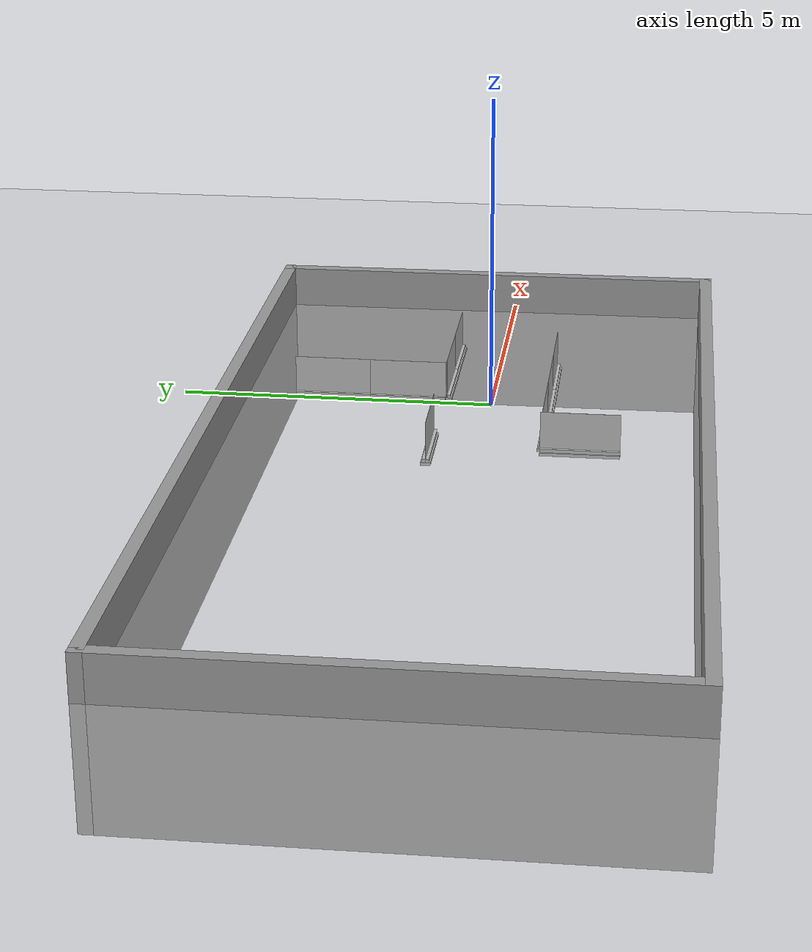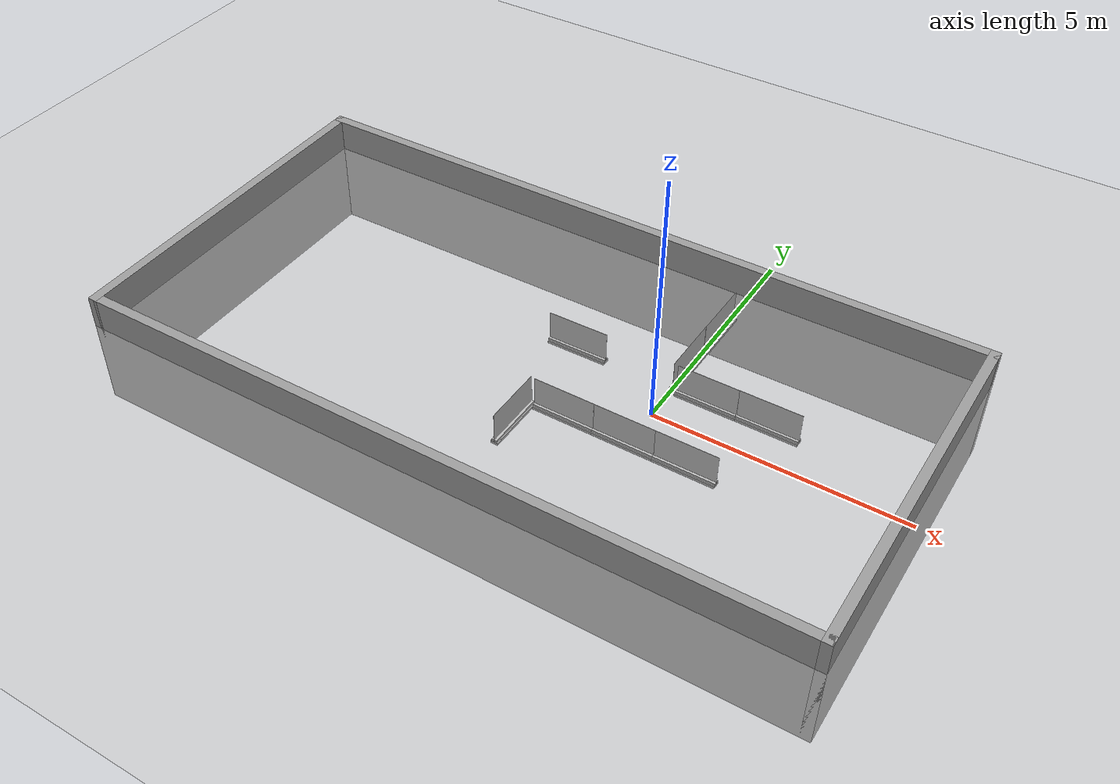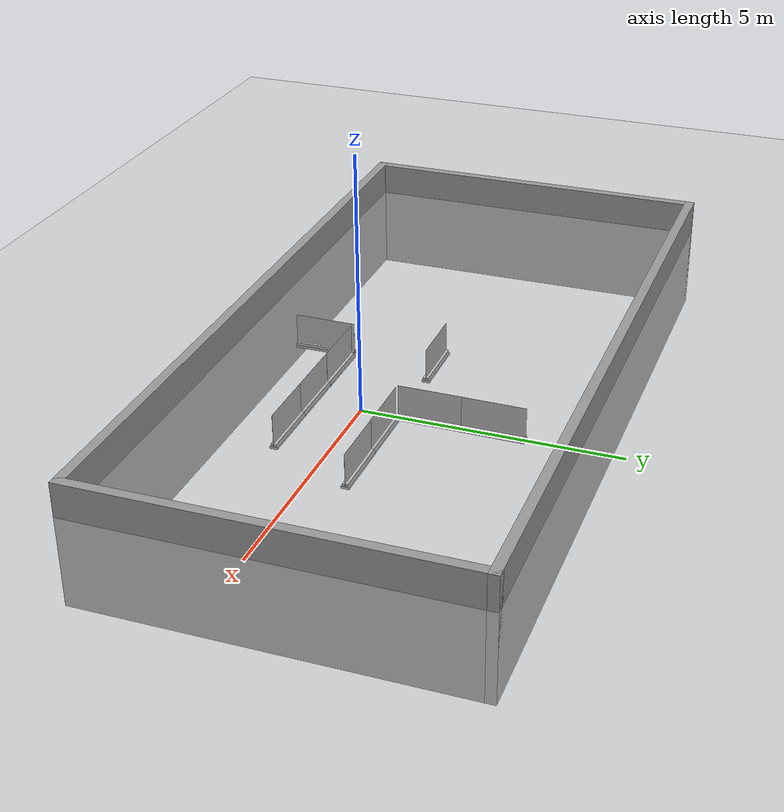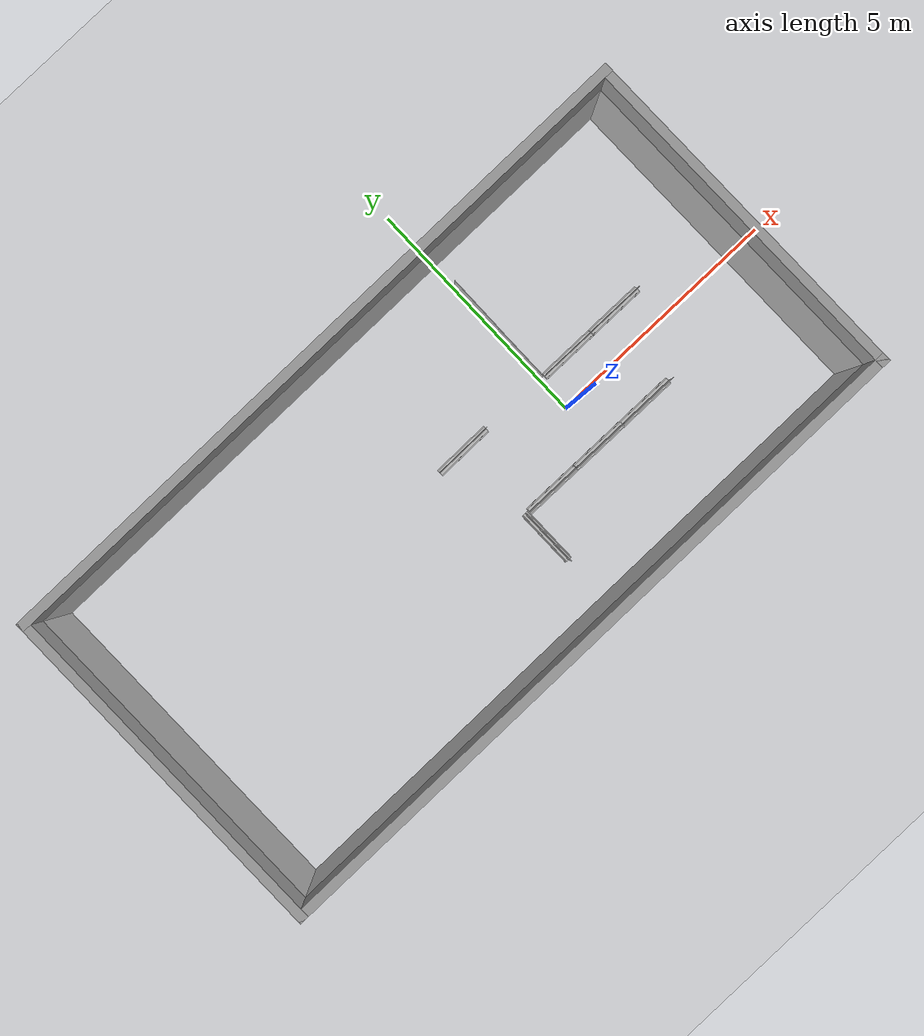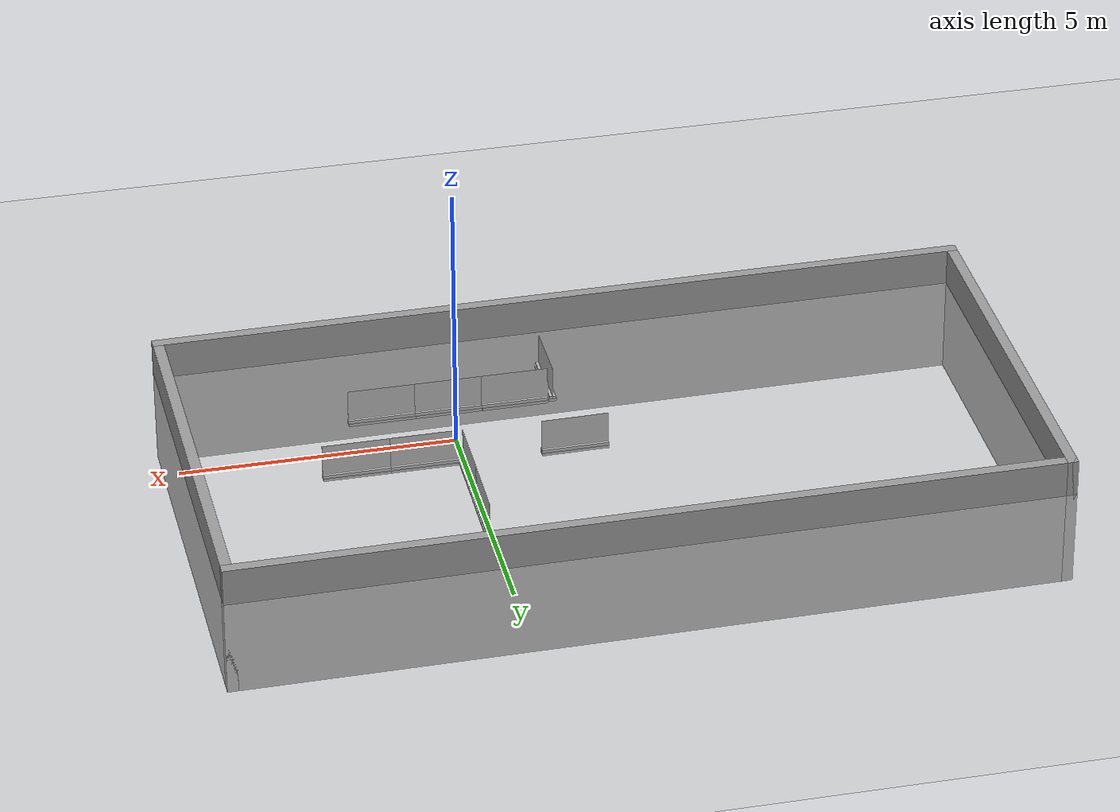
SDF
<sdf version="1.5">
 <world name="default">
  <model name="ground_plane">
   <pose>4 0 0 0 -0 0</pose>
   <static>1</static>
   <link name="link">
    <collision name="collision">
     <geometry><plane><normal>0 0 1</normal><size>100 100</size></plane></geometry>
     <surface><friction><ode><mu>100</mu><mu2>50</mu2></ode></friction></surface>
    </collision>
    <visual name="visual">
     <cast_shadows>0</cast_shadows>
     <geometry><plane><normal>0 0 1</normal><size>100 100</size></plane></geometry>
     <material>
      <script><uri>file://media/materials/scripts/gazebo.material</uri><name>Gazebo/Grey</name></script>
     </material>
    </visual>
    <velocity_decay><linear>0</linear><angular>0</angular></velocity_decay>
   </link>
  </model>
  <model name="building_template_model">
   <static>1</static>
   <link name="__default__"><velocity_decay><linear>0</linear><angular>0</angular></velocity_decay></link>
  </model>
  <model name="Fleming_big">
   <pose>-2.70751 4.05396 -1.82922 0 0 -3.13501</pose>
   <link name="Wall_0">
    <collision name="Wall_0_Collision">
     <geometry><box><size>15.2 0.2 2.5</size></box></geometry>
     <pose>0 0 1.25 0 -0 0</pose>
    </collision>
    <visual name="Wall_0_Visual">
     <pose>0 0 1.25 0 -0 0</pose>
     <geometry><box><size>15.2 0.2 2.5</size></box></geometry>
     <material>
      <script><uri>file://media/materials/scripts/gazebo.material</uri><name>Gazebo/Grey</name></script>
     </material>
    </visual>
    <velocity_decay><linear>0</linear><angular>0</angular></velocity_decay>
   </link>
   <link name="Wall_2">
    <collision name="Wall_2_Collision">
     <geometry><box><size>7.7 0.2 2.5</size></box></geometry>
     <pose>0 0 1.25 0 -0 0</pose>
    </collision>
    <visual name="Wall_2_Visual">
     <pose>0 0 1.25 0 -0 0</pose>
     <geometry><box><size>7.7 0.2 2.5</size></box></geometry>
     <material>
      <script><uri>file://media/materials/scripts/gazebo.material</uri><name>Gazebo/Grey</name></script>
     </material>
    </visual>
    <velocity_decay><linear>0</linear><angular>0</angular></velocity_decay>
    <pose>-7.5 3.75 0 0 -0 1.5708</pose>
   </link>
   <link name="Wall_3">
    <collision name="Wall_3_Collision">
     <geometry><box><size>15.2 0.2 2.5</size></box></geometry>
     <pose>0 0 1.25 0 -0 0</pose>
    </collision>
    <visual name="Wall_3_Visual">
     <pose>0 0 1.25 0 -0 0</pose>
     <geometry><box><size>15.2 0.2 2.5</size></box></geometry>
     <material>
      <script><uri>file://media/materials/scripts/gazebo.material</uri><name>Gazebo/Grey</name></script>
     </material>
    </visual>
    <velocity_decay><linear>0</linear><angular>0</angular></velocity_decay>
    <pose>0 7.5 0 0 -0 0</pose>
   </link>
   <link name="Wall_4">
    <collision name="Wall_4_Collision">
     <geometry><box><size>7.7 0.2 2.5</size></box></geometry>
     <pose>0 0 1.25 0 -0 0</pose>
    </collision>
    <visual name="Wall_4_Visual">
     <pose>0 0 1.25 0 -0 0</pose>
     <geometry><box><size>7.7 0.2 2.5</size></box></geometry>
     <material>
      <script><uri>file://media/materials/scripts/gazebo.material</uri><name>Gazebo/Grey</name></script>
     </material>
    </visual>
    <velocity_decay><linear>0</linear><angular>0</angular></velocity_decay>
    <pose>7.5 3.75 0 0 0 -1.5708</pose>
   </link>
   <static>1</static>
  </model>
  <model name="fleming_wall no plugin">
   <static>1</static>
   <link name="wall">
    <pose>0 0 0.0254 0 -0 0</pose>
    <visual name="base_visual">
     <geometry><box><size>1.2192 0.1524 0.0508</size></box></geometry>
     <material>
      <script>
       <uri>model://fleming_wall/materials/scripts</uri>
       <uri>model://fleming_wall/materials/textures</uri>
       <name>FlemingWall/Image</name>
      </script>
     </material>
    </visual>
    <visual name="front_strut_visual">
     <pose>0 0.028575 0.0508 0 -0 0</pose>
     <geometry><box><size>1.2192 0.0508 0.0508</size></box></geometry>
     <material>
      <script>
       <uri>model://fleming_wall/materials/scripts</uri>
       <uri>model://fleming_wall/materials/textures</uri>
       <name>FlemingWall/Image</name>
      </script>
     </material>
    </visual>
    <visual name="back_strut_visual">
     <pose>0 -0.028575 0.0508 0 -0 0</pose>
     <geometry><box><size>1.2192 0.0508 0.0508</size></box></geometry>
     <material>
      <script>
       <uri>model://fleming_wall/materials/scripts</uri>
       <uri>model://fleming_wall/materials/textures</uri>
       <name>FlemingWall/Image</name>
      </script>
     </material>
    </visual>
    <visual name="panel_visual">
     <pose>0 0 0.3556 0 -0 0</pose>
     <geometry><box><size>1.2192 0.003175 0.6096</size></box></geometry>
     <material>
      <script>
       <uri>model://fleming_wall/materials/scripts</uri>
       <uri>model://fleming_wall/materials/textures</uri>
       <name>FlemingWall/Image</name>
      </script>
     </material>
    </visual>
   </link>
   <pose>-1.26612 -0.953094 0 0 -0 0</pose>
  </model>
  <model name="fleming_wall no plugin_0">
   <static>1</static>
   <link name="wall">
    <pose>0 0 0.0254 0 -0 0</pose>
    <visual name="base_visual">
     <geometry><box><size>1.2192 0.1524 0.0508</size></box></geometry>
     <material>
      <script>
       <uri>model://fleming_wall/materials/scripts</uri>
       <uri>model://fleming_wall/materials/textures</uri>
       <name>FlemingWall/Image</name>
      </script>
     </material>
    </visual>
    <visual name="front_strut_visual">
     <pose>0 0.028575 0.0508 0 -0 0</pose>
     <geometry><box><size>1.2192 0.0508 0.0508</size></box></geometry>
     <material>
      <script>
       <uri>model://fleming_wall/materials/scripts</uri>
       <uri>model://fleming_wall/materials/textures</uri>
       <name>FlemingWall/Image</name>
      </script>
     </material>
    </visual>
    <visual name="back_strut_visual">
     <pose>0 -0.028575 0.0508 0 -0 0</pose>
     <geometry><box><size>1.2192 0.0508 0.0508</size></box></geometry>
     <material>
      <script>
       <uri>model://fleming_wall/materials/scripts</uri>
       <uri>model://fleming_wall/materials/textures</uri>
       <name>FlemingWall/Image</name>
      </script>
     </material>
    </visual>
    <visual name="panel_visual">
     <pose>0 0 0.3556 0 -0 0</pose>
     <geometry><box><size>1.2192 0.003175 0.6096</size></box></geometry>
     <material>
      <script>
       <uri>model://fleming_wall/materials/scripts</uri>
       <uri>model://fleming_wall/materials/textures</uri>
       <name>FlemingWall/Image</name>
      </script>
     </material>
    </visual>
   </link>
   <pose>-0.041409 -0.954382 0 0 -0 0</pose>
  </model>
  <model name="fleming_wall no plugin_1">
   <static>1</static>
   <link name="wall">
    <pose>0 0 0.0254 0 -0 0</pose>
    <visual name="base_visual">
     <geometry><box><size>1.2192 0.1524 0.0508</size></box></geometry>
     <material>
      <script>
       <uri>model://fleming_wall/materials/scripts</uri>
       <uri>model://fleming_wall/materials/textures</uri>
       <name>FlemingWall/Image</name>
      </script>
     </material>
    </visual>
    <visual name="front_strut_visual">
     <pose>0 0.028575 0.0508 0 -0 0</pose>
     <geometry><box><size>1.2192 0.0508 0.0508</size></box></geometry>
     <material>
      <script>
       <uri>model://fleming_wall/materials/scripts</uri>
       <uri>model://fleming_wall/materials/textures</uri>
       <name>FlemingWall/Image</name>
      </script>
     </material>
    </visual>
    <visual name="back_strut_visual">
     <pose>0 -0.028575 0.0508 0 -0 0</pose>
     <geometry><box><size>1.2192 0.0508 0.0508</size></box></geometry>
     <material>
      <script>
       <uri>model://fleming_wall/materials/scripts</uri>
       <uri>model://fleming_wall/materials/textures</uri>
       <name>FlemingWall/Image</name>
      </script>
     </material>
    </visual>
    <visual name="panel_visual">
     <pose>0 0 0.3556 0 -0 0</pose>
     <geometry><box><size>1.2192 0.003175 0.6096</size></box></geometry>
     <material>
      <script>
       <uri>model://fleming_wall/materials/scripts</uri>
       <uri>model://fleming_wall/materials/textures</uri>
       <name>FlemingWall/Image</name>
      </script>
     </material>
    </visual>
   </link>
   <pose>1.17672 -0.95383 0 0 -0 0</pose>
  </model>
  <model name="fleming_wall no plugin_2">
   <static>1</static>
   <link name="wall">
    <pose>0 0 0.0254 0 -0 0</pose>
    <visual name="base_visual">
     <geometry><box><size>1.2192 0.1524 0.0508</size></box></geometry>
     <material>
      <script>
       <uri>model://fleming_wall/materials/scripts</uri>
       <uri>model://fleming_wall/materials/textures</uri>
       <name>FlemingWall/Image</name>
      </script>
     </material>
    </visual>
    <visual name="front_strut_visual">
     <pose>0 0.028575 0.0508 0 -0 0</pose>
     <geometry><box><size>1.2192 0.0508 0.0508</size></box></geometry>
     <material>
      <script>
       <uri>model://fleming_wall/materials/scripts</uri>
       <uri>model://fleming_wall/materials/textures</uri>
       <name>FlemingWall/Image</name>
      </script>
     </material>
    </visual>
    <visual name="back_strut_visual">
     <pose>0 -0.028575 0.0508 0 -0 0</pose>
     <geometry><box><size>1.2192 0.0508 0.0508</size></box></geometry>
     <material>
      <script>
       <uri>model://fleming_wall/materials/scripts</uri>
       <uri>model://fleming_wall/materials/textures</uri>
       <name>FlemingWall/Image</name>
      </script>
     </material>
    </visual>
    <visual name="panel_visual">
     <pose>0 0 0.3556 0 -0 0</pose>
     <geometry><box><size>1.2192 0.003175 0.6096</size></box></geometry>
     <material>
      <script>
       <uri>model://fleming_wall/materials/scripts</uri>
       <uri>model://fleming_wall/materials/textures</uri>
       <name>FlemingWall/Image</name>
      </script>
     </material>
    </visual>
   </link>
   <pose>-1.96019 -1.53218 0 0 -0 1.57106</pose>
  </model>
  <model name="fleming_wall no plugin_3">
   <static>1</static>
   <link name="wall">
    <pose>0 0 0.0254 0 -0 0</pose>
    <visual name="base_visual">
     <geometry><box><size>1.2192 0.1524 0.0508</size></box></geometry>
     <material>
      <script>
       <uri>model://fleming_wall/materials/scripts</uri>
       <uri>model://fleming_wall/materials/textures</uri>
       <name>FlemingWall/Image</name>
      </script>
     </material>
    </visual>
    <visual name="front_strut_visual">
     <pose>0 0.028575 0.0508 0 -0 0</pose>
     <geometry><box><size>1.2192 0.0508 0.0508</size></box></geometry>
     <material>
      <script>
       <uri>model://fleming_wall/materials/scripts</uri>
       <uri>model://fleming_wall/materials/textures</uri>
       <name>FlemingWall/Image</name>
      </script>
     </material>
    </visual>
    <visual name="back_strut_visual">
     <pose>0 -0.028575 0.0508 0 -0 0</pose>
     <geometry><box><size>1.2192 0.0508 0.0508</size></box></geometry>
     <material>
      <script>
       <uri>model://fleming_wall/materials/scripts</uri>
       <uri>model://fleming_wall/materials/textures</uri>
       <name>FlemingWall/Image</name>
      </script>
     </material>
    </visual>
    <visual name="panel_visual">
     <pose>0 0 0.3556 0 -0 0</pose>
     <geometry><box><size>1.2192 0.003175 0.6096</size></box></geometry>
     <material>
      <script>
       <uri>model://fleming_wall/materials/scripts</uri>
       <uri>model://fleming_wall/materials/textures</uri>
       <name>FlemingWall/Image</name>
      </script>
     </material>
    </visual>
   </link>
   <pose>0.71904 0.725186 0 0 -0 0</pose>
  </model>
  <model name="fleming_wall no plugin_4">
   <static>1</static>
   <link name="wall">
    <pose>0 0 0.0254 0 -0 0</pose>
    <visual name="base_visual">
     <geometry><box><size>1.2192 0.1524 0.0508</size></box></geometry>
     <material>
      <script>
       <uri>model://fleming_wall/materials/scripts</uri>
       <uri>model://fleming_wall/materials/textures</uri>
       <name>FlemingWall/Image</name>
      </script>
     </material>
    </visual>
    <visual name="front_strut_visual">
     <pose>0 0.028575 0.0508 0 -0 0</pose>
     <geometry><box><size>1.2192 0.0508 0.0508</size></box></geometry>
     <material>
      <script>
       <uri>model://fleming_wall/materials/scripts</uri>
       <uri>model://fleming_wall/materials/textures</uri>
       <name>FlemingWall/Image</name>
      </script>
     </material>
    </visual>
    <visual name="back_strut_visual">
     <pose>0 -0.028575 0.0508 0 -0 0</pose>
     <geometry><box><size>1.2192 0.0508 0.0508</size></box></geometry>
     <material>
      <script>
       <uri>model://fleming_wall/materials/scripts</uri>
       <uri>model://fleming_wall/materials/textures</uri>
       <name>FlemingWall/Image</name>
      </script>
     </material>
    </visual>
    <visual name="panel_visual">
     <pose>0 0 0.3556 0 -0 0</pose>
     <geometry><box><size>1.2192 0.003175 0.6096</size></box></geometry>
     <material>
      <script>
       <uri>model://fleming_wall/materials/scripts</uri>
       <uri>model://fleming_wall/materials/textures</uri>
       <name>FlemingWall/Image</name>
      </script>
     </material>
    </visual>
   </link>
   <pose>1.94093 0.728107 0 0 -0 0</pose>
  </model>
  <model name="fleming_wall no plugin_5">
   <static>1</static>
   <link name="wall">
    <pose>0 0 0.0254 0 -0 0</pose>
    <visual name="base_visual">
     <geometry><box><size>1.2192 0.1524 0.0508</size></box></geometry>
     <material>
      <script>
       <uri>model://fleming_wall/materials/scripts</uri>
       <uri>model://fleming_wall/materials/textures</uri>
       <name>FlemingWall/Image</name>
      </script>
     </material>
    </visual>
    <visual name="front_strut_visual">
     <pose>0 0.028575 0.0508 0 -0 0</pose>
     <geometry><box><size>1.2192 0.0508 0.0508</size></box></geometry>
     <material>
      <script>
       <uri>model://fleming_wall/materials/scripts</uri>
       <uri>model://fleming_wall/materials/textures</uri>
       <name>FlemingWall/Image</name>
      </script>
     </material>
    </visual>
    <visual name="back_strut_visual">
     <pose>0 -0.028575 0.0508 0 -0 0</pose>
     <geometry><box><size>1.2192 0.0508 0.0508</size></box></geometry>
     <material>
      <script>
       <uri>model://fleming_wall/materials/scripts</uri>
       <uri>model://fleming_wall/materials/textures</uri>
       <name>FlemingWall/Image</name>
      </script>
     </material>
    </visual>
    <visual name="panel_visual">
     <pose>0 0 0.3556 0 -0 0</pose>
     <geometry><box><size>1.2192 0.003175 0.6096</size></box></geometry>
     <material>
      <script>
       <uri>model://fleming_wall/materials/scripts</uri>
       <uri>model://fleming_wall/materials/textures</uri>
       <name>FlemingWall/Image</name>
      </script>
     </material>
    </visual>
   </link>
   <pose>0.02927 1.34872 0 0 -0 1.56833</pose>
  </model>
  <model name="fleming_wall no plugin_6">
   <static>1</static>
   <link name="wall">
    <pose>0 0 0.0254 0 -0 0</pose>
    <visual name="base_visual">
     <geometry><box><size>1.2192 0.1524 0.0508</size></box></geometry>
     <material>
      <script>
       <uri>model://fleming_wall/materials/scripts</uri>
       <uri>model://fleming_wall/materials/textures</uri>
       <name>FlemingWall/Image</name>
      </script>
     </material>
    </visual>
    <visual name="front_strut_visual">
     <pose>0 0.028575 0.0508 0 -0 0</pose>
     <geometry><box><size>1.2192 0.0508 0.0508</size></box></geometry>
     <material>
      <script>
       <uri>model://fleming_wall/materials/scripts</uri>
       <uri>model://fleming_wall/materials/textures</uri>
       <name>FlemingWall/Image</name>
      </script>
     </material>
    </visual>
    <visual name="back_strut_visual">
     <pose>0 -0.028575 0.0508 0 -0 0</pose>
     <geometry><box><size>1.2192 0.0508 0.0508</size></box></geometry>
     <material>
      <script>
       <uri>model://fleming_wall/materials/scripts</uri>
       <uri>model://fleming_wall/materials/textures</uri>
       <name>FlemingWall/Image</name>
      </script>
     </material>
    </visual>
    <visual name="panel_visual">
     <pose>0 0 0.3556 0 -0 0</pose>
     <geometry><box><size>1.2192 0.003175 0.6096</size></box></geometry>
     <material>
      <script>
       <uri>model://fleming_wall/materials/scripts</uri>
       <uri>model://fleming_wall/materials/textures</uri>
       <name>FlemingWall/Image</name>
      </script>
     </material>
    </visual>
   </link>
   <pose>0.039497 2.56669 0 0 -0 1.56245</pose>
  </model>
  <model name="fleming_wall no plugin_7">
   <static>1</static>
   <link name="wall">
    <pose>0 0 0.0254 0 -0 0</pose>
    <visual name="base_visual">
     <geometry><box><size>1.2192 0.1524 0.0508</size></box></geometry>
     <material>
      <script>
       <uri>model://fleming_wall/materials/scripts</uri>
       <uri>model://fleming_wall/materials/textures</uri>
       <name>FlemingWall/Image</name>
      </script>
     </material>
    </visual>
    <visual name="front_strut_visual">
     <pose>0 0.028575 0.0508 0 -0 0</pose>
     <geometry><box><size>1.2192 0.0508 0.0508</size></box></geometry>
     <material>
      <script>
       <uri>model://fleming_wall/materials/scripts</uri>
       <uri>model://fleming_wall/materials/textures</uri>
       <name>FlemingWall/Image</name>
      </script>
     </material>
    </visual>
    <visual name="back_strut_visual">
     <pose>0 -0.028575 0.0508 0 -0 0</pose>
     <geometry><box><size>1.2192 0.0508 0.0508</size></box></geometry>
     <material>
      <script>
       <uri>model://fleming_wall/materials/scripts</uri>
       <uri>model://fleming_wall/materials/textures</uri>
       <name>FlemingWall/Image</name>
      </script>
     </material>
    </visual>
    <visual name="panel_visual">
     <pose>0 0 0.3556 0 -0 0</pose>
     <geometry><box><size>1.2192 0.003175 0.6096</size></box></geometry>
     <material>
      <script>
       <uri>model://fleming_wall/materials/scripts</uri>
       <uri>model://fleming_wall/materials/textures</uri>
       <name>FlemingWall/Image</name>
      </script>
     </material>
    </visual>
   </link>
   <pose>-2.00446 0.756106 0 0 -0 0.010747</pose>
  </model>
 </world>
</sdf>
